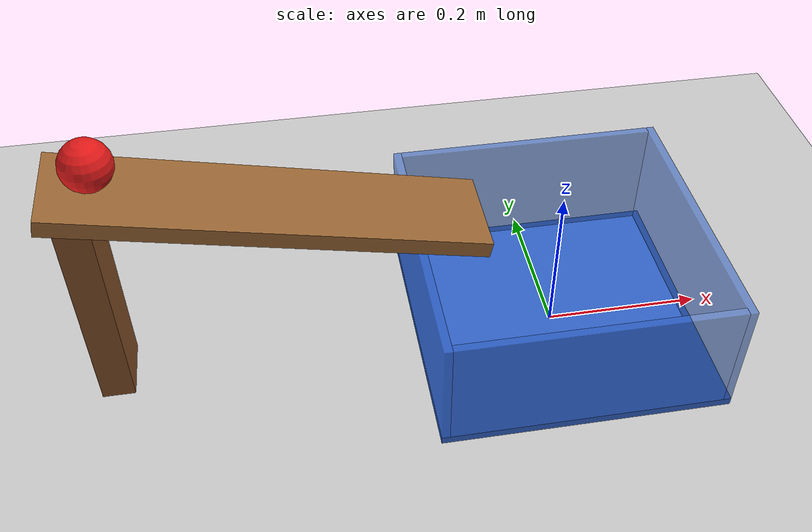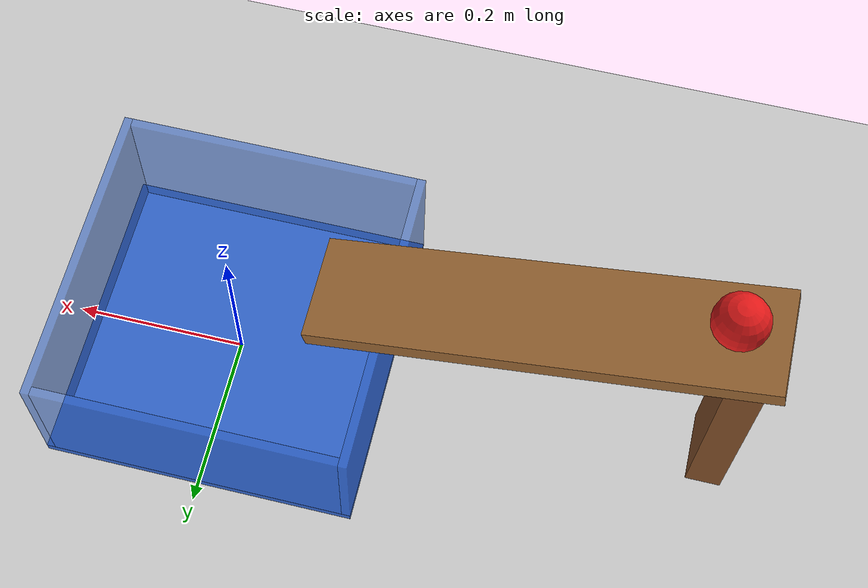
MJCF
<mujoco model="ball_ramp_cup">
  <option timestep="0.002" gravity="0 0 -9.81"/>
  <visual>
    <global offwidth="1280" offheight="720"/>
  </visual>
  <worldbody>
    <light name="sun" pos="0 0 3" dir="0 0 -1" directional="true"/>
    <geom name="floor" type="plane" size="3 3 0.1" pos="0 0 0" rgba="0.8 0.8 0.8 1"/>

    <geom name="ramp_deck" type="box" size="0.25 0.06 0.01" pos="-0.3466 0 0.2422" euler="0 12 0" rgba="0.6 0.4 0.2 1"/>
    <geom name="ramp_support" type="box" size="0.02 0.04 0.14" pos="-0.56 0 0.14" rgba="0.5 0.3 0.15 1"/>

    <body name="cup" pos="0 0 0">
      <geom name="cup_base" type="box" size="0.18 0.18 0.005" pos="0 0 0.005" rgba="0.2 0.4 0.8 1"/>
      <geom name="cup_wall_px" type="box" size="0.005 0.18 0.075" pos="0.175 0 0.085" rgba="0.2 0.4 0.8 0.6"/>
      <geom name="cup_wall_nx" type="box" size="0.005 0.18 0.075" pos="-0.175 0 0.085" rgba="0.2 0.4 0.8 0.6"/>
      <geom name="cup_wall_py" type="box" size="0.17 0.005 0.075" pos="0 0.175 0.085" rgba="0.2 0.4 0.8 0.6"/>
      <geom name="cup_wall_ny" type="box" size="0.17 0.005 0.075" pos="0 -0.175 0.085" rgba="0.2 0.4 0.8 0.6"/>
    </body>

    <body name="ball" pos="-0.5339 0 0.324">
      <freejoint name="ball_free"/>
      <geom name="ball" type="sphere" size="0.03" condim="6" friction="0.8 0.005 0.002" rgba="0.9 0.1 0.1 1"/>
    </body>
  </worldbody>
  <keyframe>
    <key name="start" qpos="-0.5339 0 0.324 1 0 0 0" qvel="0 0 0 0 0 0"/>
  </keyframe>
</mujoco>
